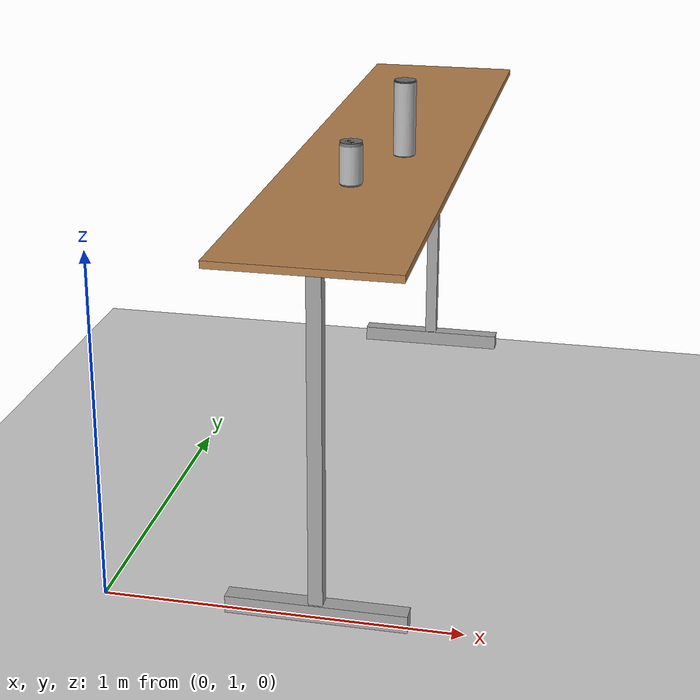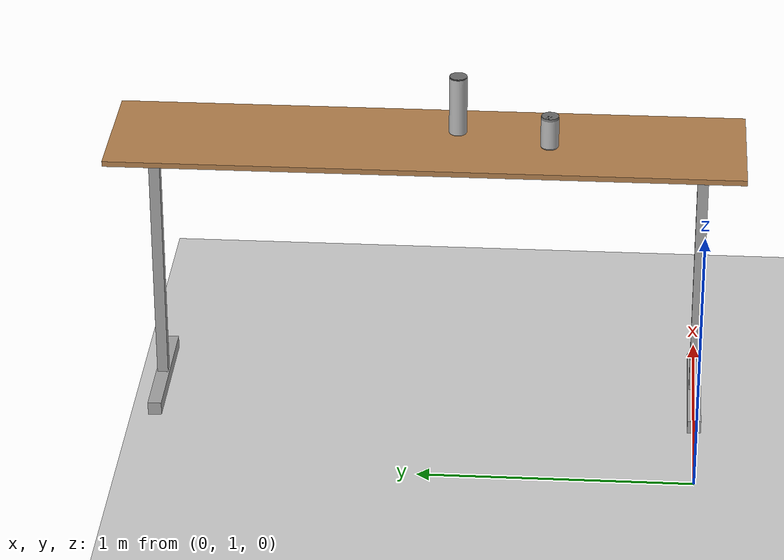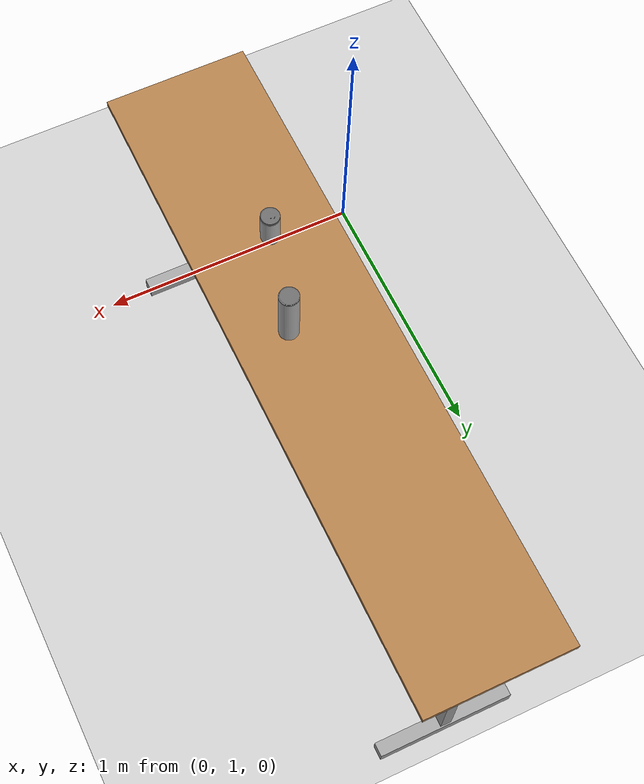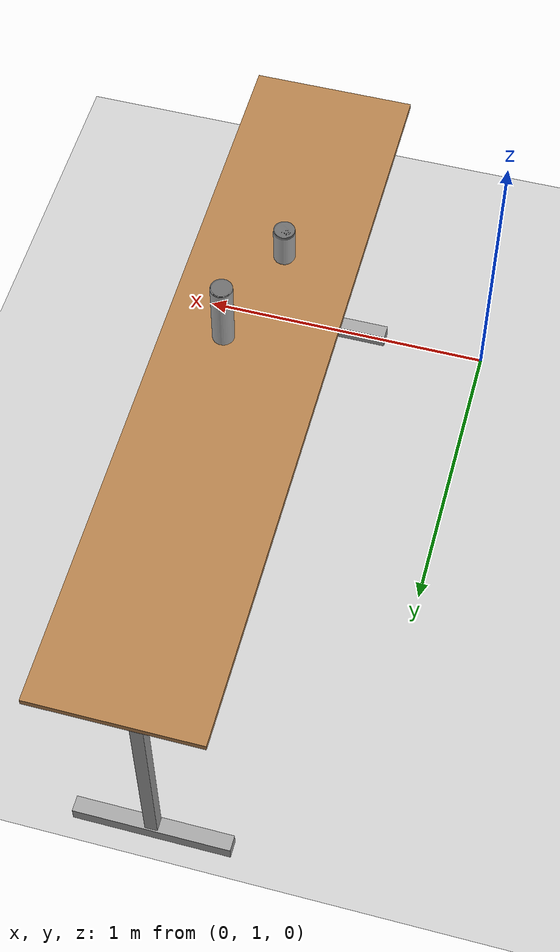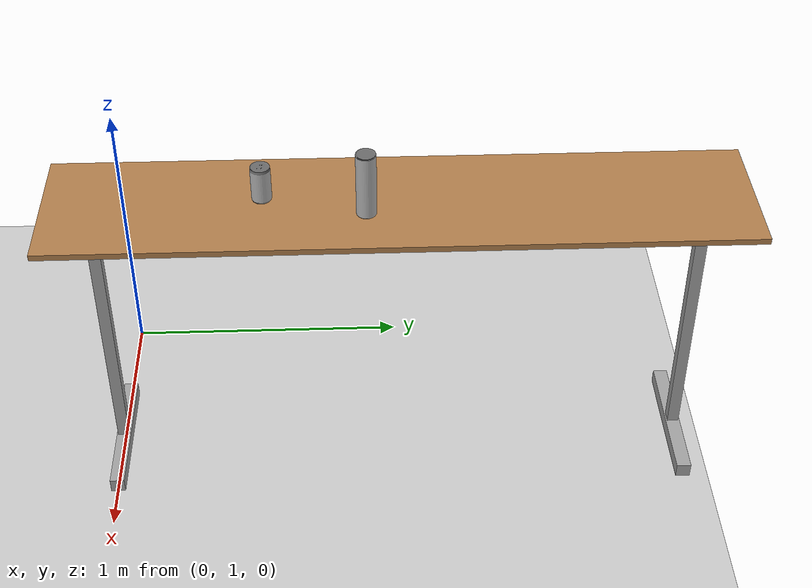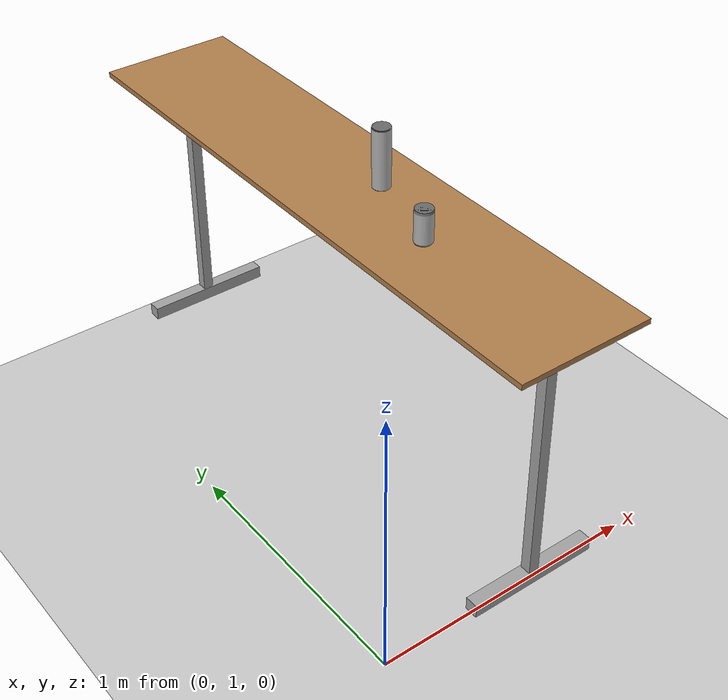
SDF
<sdf version="1.4">
 <world name="default">
  <scene>
   <ambient>0.5 0.5 0.5 1</ambient>
   <shadows>0</shadows>
   <grid>0</grid>
   <background>0.7 0.7 0.7 1</background>
  </scene>
  <physics type="ode">
   <real_time_update_rate>333.0</real_time_update_rate>
   <max_step_size>0.003</max_step_size>
   <ode><solver><type>quick</type><iters>100</iters></solver><constraints><cfm>0.0001</cfm></constraints></ode>
  </physics>
  <model name="gplane">
   <link name="body">
    <collision name="gplane_coll">
     <geometry><plane><normal>0 0 1</normal><size>5.075 6.18</size></plane></geometry>
     <surface><contact><ode><kp>1e+06</kp><kd>1</kd></ode></contact></surface>
     <laser_retro>2000</laser_retro>
    </collision>
    <visual name="gplane_vis">
     <geometry><plane><normal>0 0 1</normal><size>5.075 6.18</size></plane></geometry>
     <material>
      <script>
       <uri>model://base_materials/carpet/scripts</uri>
       <uri>model://base_materials/carpet/textures</uri>
       <name>carpet/carpet01</name>
      </script>
     </material>
     <cast_shadows>0</cast_shadows>
    </visual>
    <velocity_decay><linear>0</linear><angular>0</angular></velocity_decay>
   </link>
   <static>1</static>
  </model>
  <light name="inner_point_white1" type="point">
   <pose>1.2 2.3 4 0 0 0</pose>
   <diffuse>0.2 0.2 0.2 1</diffuse>
   <specular>0.1 0.1 0.1 1</specular>
   <attenuation>
    <range>20</range>
    <linear>0.1</linear>
    <constant>0.2</constant>
    <quadratic>0</quadratic>
   </attenuation>
   <cast_shadows>0</cast_shadows>
   <direction>0 0 -1</direction>
  </light>
  <include>
   <static>1</static>
   <pose>0.6 2 0 0 0 0</pose>
   <uri>model://high_table</uri>
   <name>high_table01</name>
  </include>
  <include>
   <static>0</static>
   <pose>0.5749 1.5577 1.1127 0 0 1</pose>
   <uri>model://hsr_orange</uri>
   <name>hsr_orange_02</name>
  </include>
  <include>
   <static>0</static>
   <pose>0.6676 1.8933 1.1625 0 0 1.7557</pose>
   <uri>model://hsr_pringles</uri>
   <name>hsr_pringles_02</name>
  </include>
 </world>
</sdf>

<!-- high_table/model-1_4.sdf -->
<sdf version="1.4">
    <model name='high_table'>
      <link name='link'>
        <pose>0.0 0.0 0.0 0 0 0</pose>
        <inertial>
          <mass>10.0</mass>
          <inertia>
            <ixx>1</ixx>
            <ixy>0</ixy>
            <ixz>0</ixz>
            <iyy>1</iyy>
            <iyz>0</iyz>
            <izz>1</izz>
          </inertia>
        </inertial>
        <visual name='top_board'>
          <pose>0 0 1.04 0 0 0</pose>
          <geometry>
            <box>
              <size>0.5 2.3 0.02</size>
            </box>
          </geometry>
          <material>
            <script>
              <uri>model://base_materials/wood/scripts/wood.material</uri>
              <name>base_materials/dark_wood</name>
            </script>
          </material>
        </visual>
        <collision name='collision_top_board'>
          <pose>0 0 1.04 0 0 0</pose>
          <geometry>
            <box>
              <size>0.5 2.3 0.02</size>
            </box>
          </geometry>
          <max_contacts>10</max_contacts>
          <surface>
            <bounce/>
            <ode>
                <mu>0.25</mu>
                <mu2>12.2</mu2>
              </ode>
            <contact>
              <ode/>
            </contact>
          </surface>
        </collision>
        <visual name='left_poll'>
          <pose>0 1.00 0 0 0 0</pose>
          <geometry>
            <mesh>
              <uri>model://high_table/meshes/poll.dae</uri>
            </mesh>
          </geometry>
          <material>
          </material>
        </visual>
        <collision name='collision_left_poll'>
          <pose>0 1.00 0 0 0 0</pose>
          <geometry>
            <mesh>
              <uri>model://high_table/meshes/poll.dae</uri>
            </mesh>
          </geometry>
          <max_contacts>10</max_contacts>
          <surface>
            <bounce/>
            <friction>
              <ode/>
            </friction>
            <contact>
              <ode/>
            </contact>
          </surface>
        </collision>
        <visual name='right_poll'>
          <pose>0 -1.00 0 0 0 0</pose>
          <geometry>
            <mesh>
              <uri>model://high_table/meshes/poll.dae</uri>
            </mesh>
          </geometry>
          <material>
          </material>
        </visual>
        <collision name='collision_right_poll'>
          <pose>0 -1.00 0 0 0 0</pose>
          <geometry>
            <mesh>
              <uri>model://high_table/meshes/poll.dae</uri>
            </mesh>
          </geometry>
          <max_contacts>10</max_contacts>
          <surface>
            <bounce/>
            <friction>
              <ode/>
            </friction>
            <contact>
              <ode/>
            </contact>
          </surface>
        </collision>
        <velocity_decay>
          <linear>0</linear>
          <angular>0</angular>
        </velocity_decay>
        <self_collide>0</self_collide>
        <kinematic>0</kinematic>
        <gravity>1</gravity>
      </link>
      <static>1</static>
    </model>
</sdf>

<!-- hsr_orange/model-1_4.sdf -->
<sdf version="1.4">
    <model name='hsr_orange'>
      <link name='link'>
        <pose>0 0 0 0 0 0</pose>
        <inertial>
          <mass>0.35</mass>
          <inertia>
            <ixx>0.001481</ixx>
            <ixy>0</ixy>
            <ixz>0</ixz>
            <iyy>0.001481</iyy>
            <iyz>0</iyz>
            <izz>0.000168</izz>
          </inertia>
        </inertial>
        <visual name='hsr_orange'>
          <pose>0.0 0.0 0.0 0 0 0</pose>
          <geometry>
            <mesh>
              <uri>model://hsr_orange/meshes/hsr_orange.dae</uri>
            </mesh>
          </geometry>
          <material/>
        </visual>
        <collision name='hsr_orange'>
          <pose>0.0 0.0 0.0 0 0 0</pose>
          <geometry>
            <cylinder>
              <radius>0.033</radius>
              <length>0.1235</length>
            </cylinder>
          </geometry>
          <max_contacts>10</max_contacts>
          <surface>
            <bounce>
              <restitution_coefficient>0.2</restitution_coefficient>
              <threshold>0</threshold>
            </bounce>
            <friction>
              <ode>
                <mu>1.05</mu>
                <mu2>3.08</mu2>
              </ode>
            </friction>
            <contact>
              <ode>
                <max_vel>10</max_vel>
              </ode>
            </contact>
          </surface>
        </collision>
        <velocity_decay>
          <linear>0</linear>
          <angular>0</angular>
        </velocity_decay>
        <self_collide>0</self_collide>
        <kinematic>0</kinematic>
        <gravity>1</gravity>
      </link>
      <static>0</static>
    </model>
</sdf>

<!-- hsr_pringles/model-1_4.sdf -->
<sdf version="1.4">
    <model name='hsr_pringles'>
      <link name='link'>
        <pose>0 0 0 0 0 0</pose>
        <inertial>
          <mass>0.19</mass>
          <inertia>
            <ixx>0.004491</ixx>
            <ixy>0</ixy>
            <ixz>0</ixz>
            <iyy>0.004491</iyy>
            <iyz>0</iyz>
            <izz>0.000103</izz>
          </inertia>
        </inertial>
        <visual name='hsr_pringles'>
          <pose>0.0 0.0 0.0 0 0 0</pose>
          <geometry>
            <mesh>
              <uri>model://hsr_pringles/meshes/hsr_pringles.dae</uri>
            </mesh>
          </geometry>
          <material/>
        </visual>
        <collision name='hsr_pringles'>
          <pose>0.0 0.0 0.0 0 0 0</pose>
          <geometry>
            <cylinder>
              <radius>0.033</radius>
              <length>0.225</length>
            </cylinder>
          </geometry>
          <max_contacts>10</max_contacts>
          <surface>
            <bounce>
              <restitution_coefficient>0.2</restitution_coefficient>
              <threshold>0</threshold>
            </bounce>
            <friction>
              <ode>
              	<mu>0.2</mu>
            	  <mu2>0.587</mu2>
              </ode>
            </friction>
            <contact>
              <ode>
                <max_vel>10</max_vel>
              </ode>
            </contact>
          </surface>
        </collision>
        <velocity_decay>
          <linear>0</linear>
          <angular>0</angular>
        </velocity_decay>
        <self_collide>0</self_collide>
        <kinematic>0</kinematic>
        <gravity>1</gravity>
      </link>
      <static>0</static>
    </model>
</sdf>
